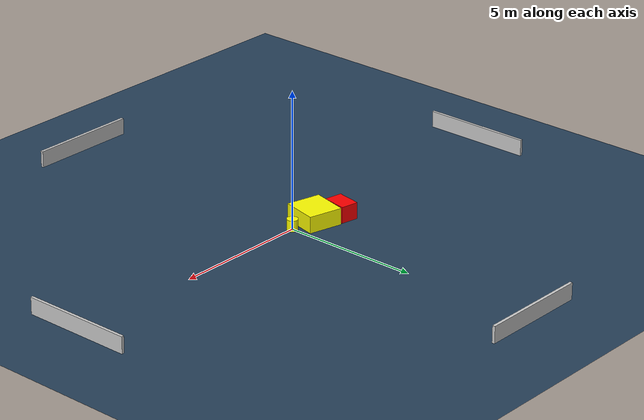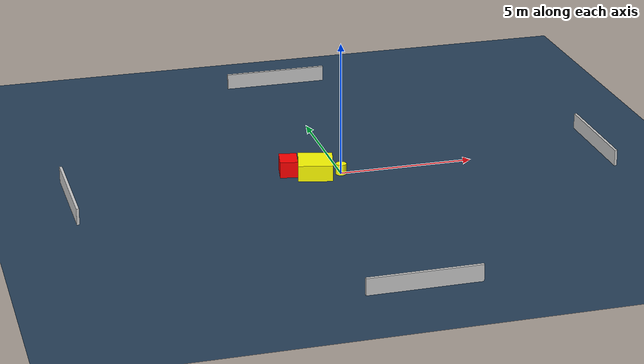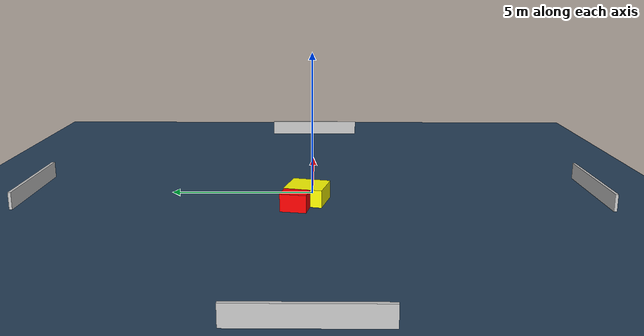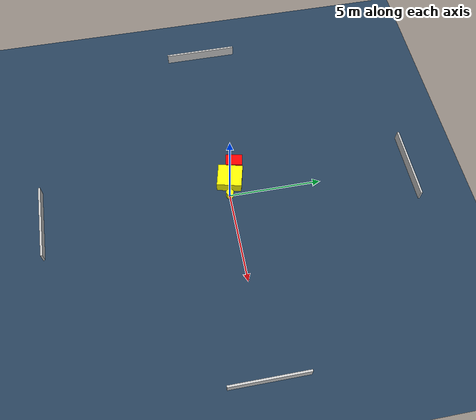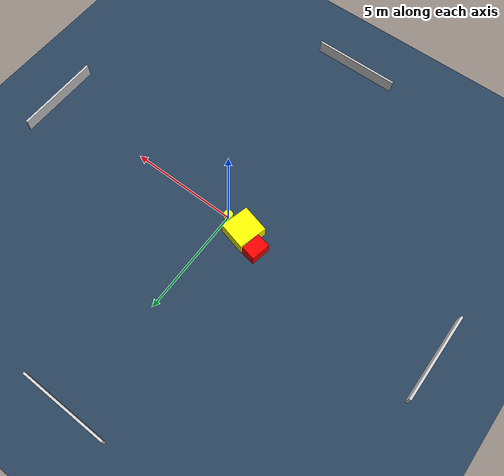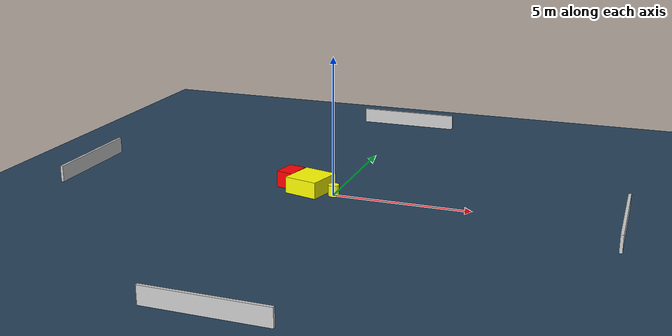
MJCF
<?xml version="1.0" ?>
<mujoco model="generated_environment">
  <option timestep="0.01" integrator="RK4" cone="elliptic"/>
  <default>
    <geom density="1"/>
  </default>
  <asset>
    <texture builtin="gradient" height="3072" name="skybox" rgb1="0.3 0.5 0.7" rgb2="0 0 0" type="skybox" width="512"/>
    <texture builtin="checker" height="300" name="groundplane" rgb1="0.2 0.3 0.4" rgb2="0.1 0.2 0.3" type="2d" width="300"/>
    <material name="groundplane" reflectance="0.2" texrepeat="5 5" texture="groundplane"/>
  </asset>
  <worldbody>
    <light dir="0 0 -1" directional="true" pos="0 0 1.5"/>
    <geom condim="3" friction="0.5 0.005 0.001" material="groundplane" name="floor" pos="0 0 0" size="0 0 0.05" type="plane"/>
    <body name="walls">
      <geom name="wall_1" condim="4" pos="-10.0 0.0 0.3" rgba="0.800000011920929 0.800000011920929 0.800000011920929 1.0" size="0.05 2.0 0.3" type="box"/>
      <geom name="wall_2" condim="4" pos="10.0 0.0 0.3" rgba="0.800000011920929 0.800000011920929 0.800000011920929 1.0" size="0.05 2.0 0.3" type="box"/>
      <geom name="wall_3" condim="4" pos="0.0 -10.0 0.3" rgba="0.800000011920929 0.800000011920929 0.800000011920929 1.0" size="2.0 0.05 0.3" type="box"/>
      <geom name="wall_4" condim="4" pos="0.0 10.0 0.3" rgba="0.800000011920929 0.800000011920929 0.800000011920929 1.0" size="2.0 0.05 0.3" type="box"/>
    </body>
    <body name="robot">
      <joint name="joint_x" type="slide" pos="0 0 0" axis="1 0 0"/>
      <joint name="joint_y" type="slide" pos="0 0 0" axis="0 1 0"/>
      <geom name="robot" type="cylinder" pos="0.0 0.0 0.2" size="0.2 0.2 0.0" mass="5.0" friction="1.0 0.005 0.0001" condim="4" rgba="1.0 1.0 0.0 1.0"/>
    </body>
    <body name="obstacle_1_movable">
      <geom name="obstacle_1_movable" condim="4" pos="-0.9337265298725728 0.16423436117700194 0.3" euler="0 0 75.97625770808848" friction="0.0 0.005 0.001" rgba="1.0 1.0 0.0 1.0" size="0.6622322246392396 0.6345929250950346 0.3" type="box" mass="0.1"/>
      <joint type="free"/>
    </body>
    <body name="obstacle_2_static">
      <geom name="obstacle_2_static" condim="4" pos="-1.8554404169943925 0.5624338337121865 0.3" euler="0 0 259.4856057348802" friction="0.0 0.005 0.001" rgba="1.0 0.0 0.0 1.0" size="0.4468304975133599 0.3286141820656374 0.3" type="box"/>
    </body>
  </worldbody>
  <actuator>
    <motor name="actuator_x" joint="joint_x" gear="1" ctrlrange="-1 1"/>
    <motor name="actuator_y" joint="joint_y" gear="1" ctrlrange="-1 1"/>
  </actuator>
</mujoco>
